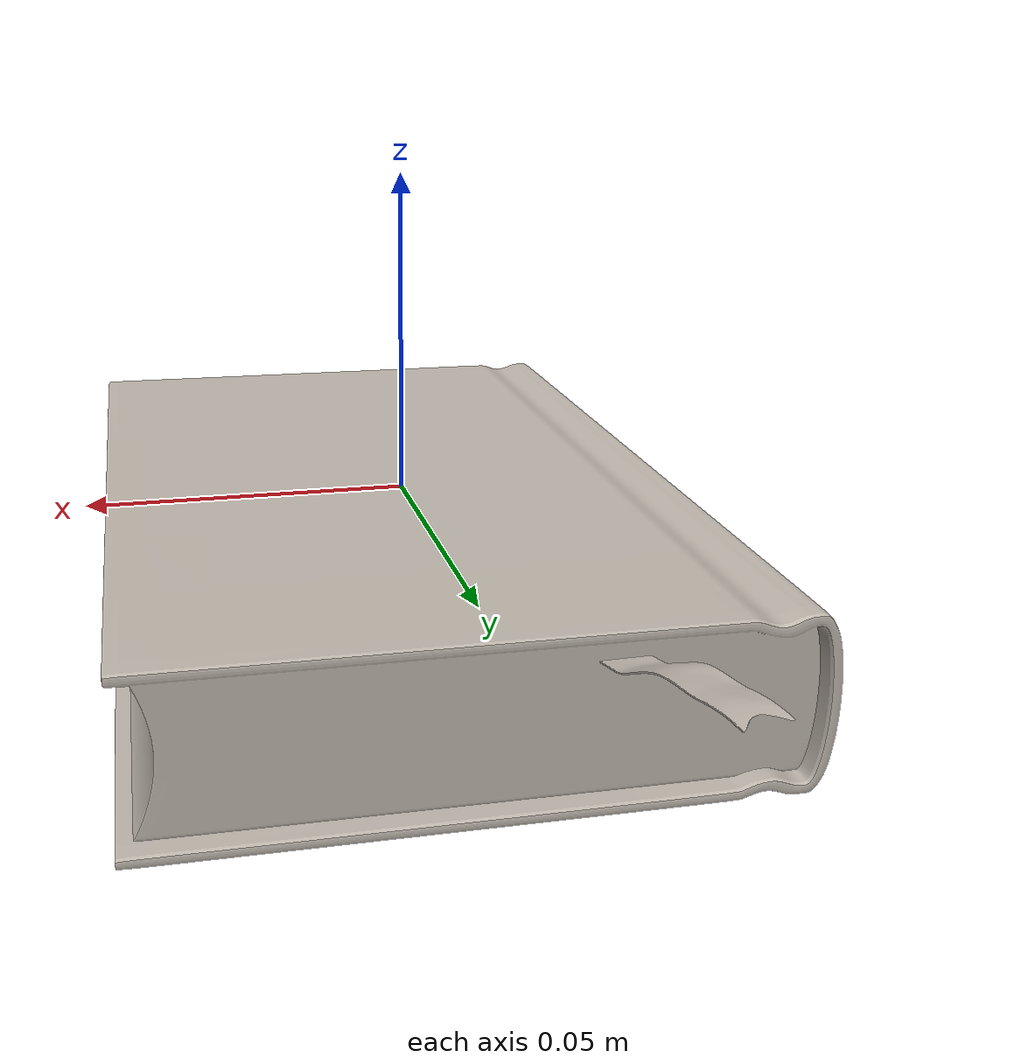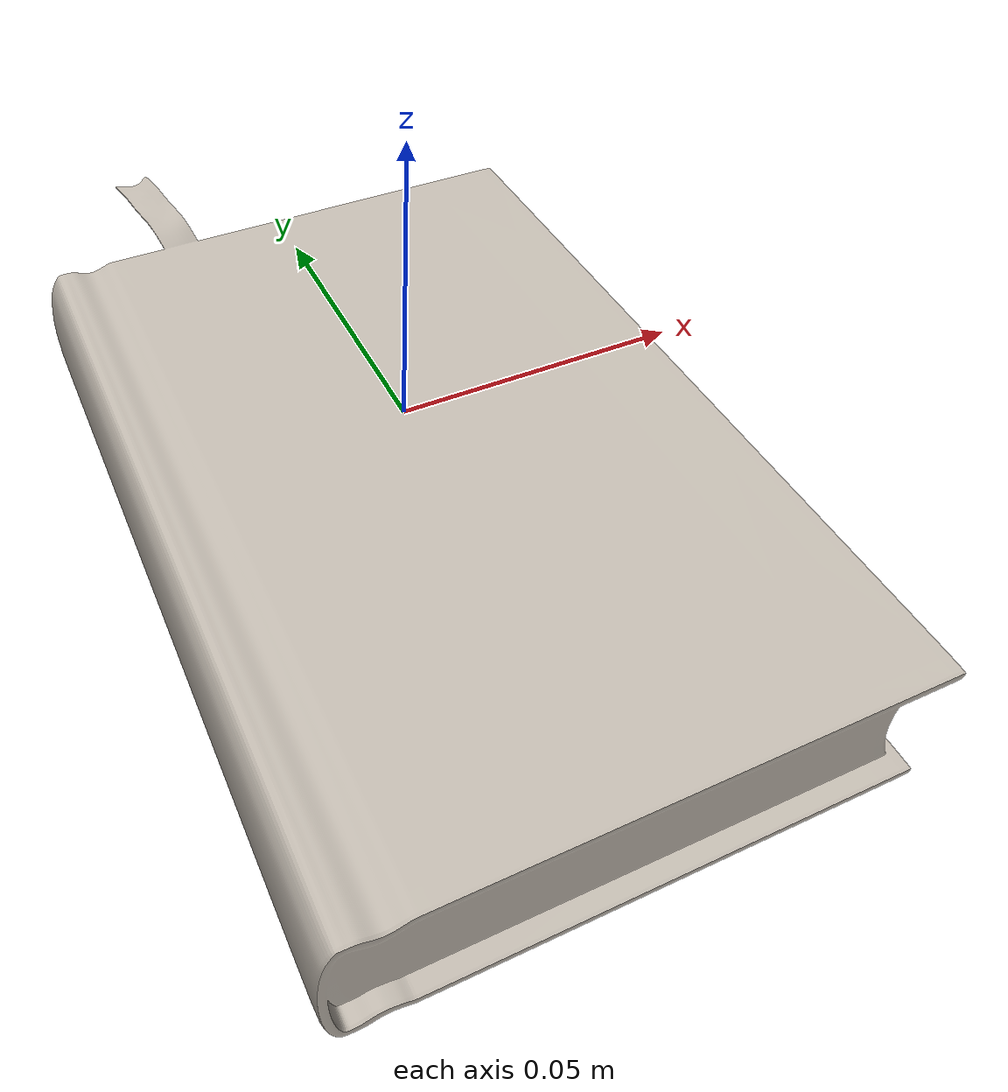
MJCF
<?xml version="1.0" encoding="utf-8"?>
<mujoco model="book">
  <compiler angle="radian" meshdir="assets" texturedir="assets" autolimits="true"/>
  <asset>
    <mesh file="book.obj" scale="0.5 0.5 0.5"/>
    <texture type="2d" name="book" file="book.png"/>
    <material name="book" specular="1" shininess="1" texture="book"/>
  </asset>
  <default>
    <default class="book">
      <geom type="mesh" mass="0.5" density="500" solimp="0.98 0.99 0.001" solref="0.004 1"/>
      <default class="balance">
        <geom group="3" type="sphere" mass="1" size="0.01" pos="0 -0.02 -0.02" contype="0" conaffinity="0"/>
      </default>
    </default>
  </default>
  <worldbody>
    <body name="book" childclass="book">
      <geom name="book" mesh="book" material="book" euler="-1.5708 0 0" mass="3" density="500" friction="1.5 0.1 0.01" solimp="0.95 0.99 0.001" solref="0.005 1" />
      <geom class="balance"/>
    </body>
  </worldbody>
</mujoco>
